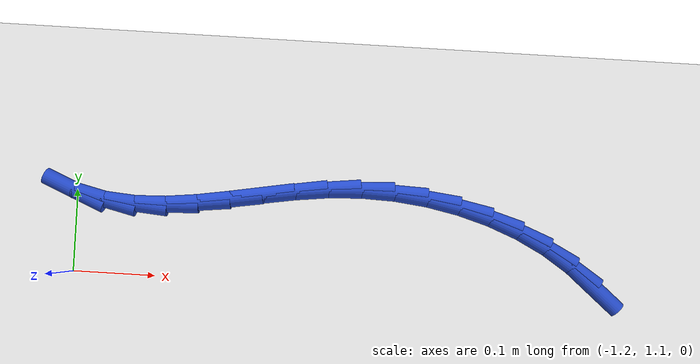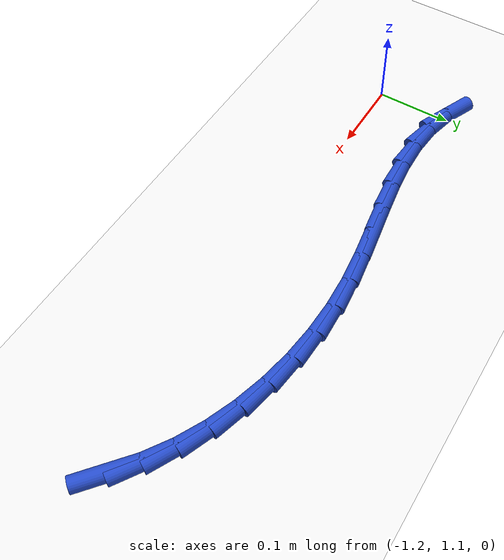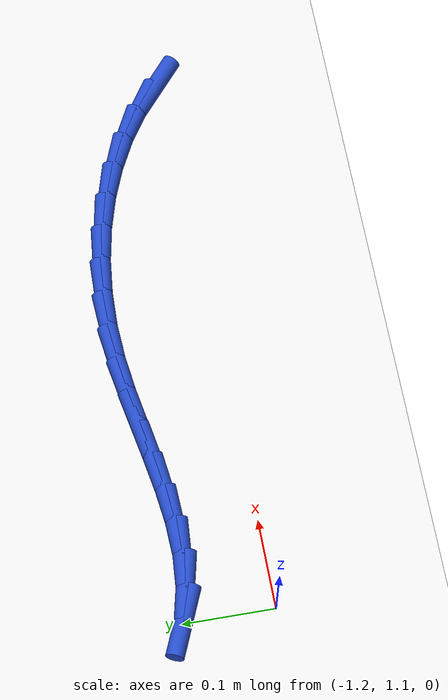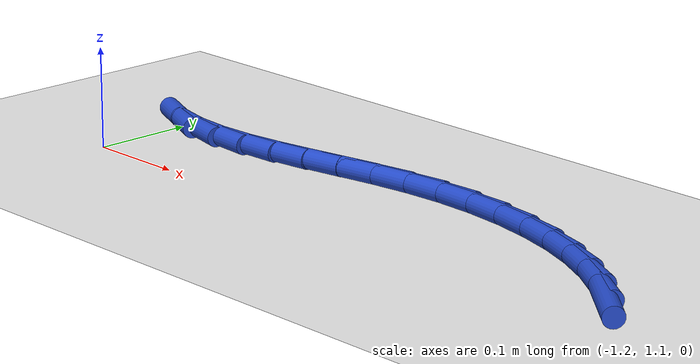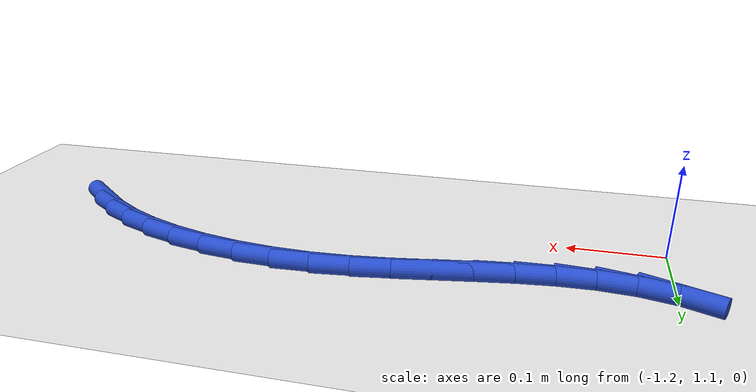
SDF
<sdf version="1.6">
 <world name="default">
  <model name="ground_plane">
   <static>1</static>
   <link name="link">
    <collision name="collision">
     <geometry><plane><normal>0 0 1</normal><size>100 100</size></plane></geometry>
     <surface><friction><ode><mu>100</mu><mu2>50</mu2></ode></friction></surface>
    </collision>
    <visual name="visual">
     <cast_shadows>0</cast_shadows>
     <geometry><plane><normal>0 0 1</normal><size>100 100</size></plane></geometry>
     <material>
      <script><uri>file://media/materials/scripts/gazebo.material</uri><name>Gazebo/WhiteGlow</name></script>
     </material>
    </visual>
   </link>
  </model>
  <model name="line">
   <link name="link_34">
    <pose>-0.5678974631067041 1.1183019132170997 0.01 0 1.57 -0.6992649917668289</pose>
    <collision name="collision">
     <geometry><cylinder><radius>0.01</radius><length>0.08</length></cylinder></geometry>
    </collision>
    <visual name="visual">
     <material>
      <script><name>Gazebo/Blue</name><uri>file://media/materials/scripts/gazebo.material</uri></script>
     </material>
     <geometry><cylinder><radius>0.01</radius><length>0.08</length></cylinder></geometry>
    </visual>
   </link>
   <link name="link_35">
    <pose>-0.5958572411078632 1.1418170007449144 0.01 0 1.57 -0.5814417226303559</pose>
    <collision name="collision">
     <geometry><cylinder><radius>0.01</radius><length>0.08</length></cylinder></geometry>
    </collision>
    <visual name="visual">
     <material>
      <script><name>Gazebo/Blue</name><uri>file://media/materials/scripts/gazebo.material</uri></script>
     </material>
     <geometry><cylinder><radius>0.01</radius><length>0.08</length></cylinder></geometry>
    </visual>
   </link>
   <link name="link_36">
    <pose>-0.6269995718535288 1.1622847051215315 0.01 0 1.57 -0.47424900157333966</pose>
    <collision name="collision">
     <geometry><cylinder><radius>0.01</radius><length>0.08</length></cylinder></geometry>
    </collision>
    <visual name="visual">
     <material>
      <script><name>Gazebo/Blue</name><uri>file://media/materials/scripts/gazebo.material</uri></script>
     </material>
     <geometry><cylinder><radius>0.01</radius><length>0.08</length></cylinder></geometry>
    </visual>
   </link>
   <link name="link_37">
    <pose>-0.6608554802105862 1.1796637168364834 0.01 0 1.57 -0.3759323834869725</pose>
    <collision name="collision">
     <geometry><cylinder><radius>0.01</radius><length>0.08</length></cylinder></geometry>
    </collision>
    <visual name="visual">
     <material>
      <script><name>Gazebo/Blue</name><uri>file://media/materials/scripts/gazebo.material</uri></script>
     </material>
     <geometry><cylinder><radius>0.01</radius><length>0.08</length></cylinder></geometry>
    </visual>
   </link>
   <link name="link_38">
    <pose>-0.6969559910459185 1.1939127263792981 0.01 0 1.57 -0.28453585115900837</pose>
    <collision name="collision">
     <geometry><cylinder><radius>0.01</radius><length>0.08</length></cylinder></geometry>
    </collision>
    <visual name="visual">
     <material>
      <script><name>Gazebo/Blue</name><uri>file://media/materials/scripts/gazebo.material</uri></script>
     </material>
     <geometry><cylinder><radius>0.01</radius><length>0.08</length></cylinder></geometry>
    </visual>
   </link>
   <link name="link_39">
    <pose>-0.7348321292264106 1.2049904242395075 0.01 0 1.57 -0.19809530270771414</pose>
    <collision name="collision">
     <geometry><cylinder><radius>0.01</radius><length>0.08</length></cylinder></geometry>
    </collision>
    <visual name="visual">
     <material>
      <script><name>Gazebo/Blue</name><uri>file://media/materials/scripts/gazebo.material</uri></script>
     </material>
     <geometry><cylinder><radius>0.01</radius><length>0.08</length></cylinder></geometry>
    </visual>
   </link>
   <link name="link_40">
    <pose>-0.7740149196189464 1.2128555009066413 0.01 0 1.57 -0.11471384654005204</pose>
    <collision name="collision">
     <geometry><cylinder><radius>0.01</radius><length>0.08</length></cylinder></geometry>
    </collision>
    <visual name="visual">
     <material>
      <script><name>Gazebo/Blue</name><uri>file://media/materials/scripts/gazebo.material</uri></script>
     </material>
     <geometry><cylinder><radius>0.01</radius><length>0.08</length></cylinder></geometry>
    </visual>
   </link>
   <link name="link_41">
    <pose>-0.8140353870904102 1.2174666468702302 0.01 0 1.57 -0.03256913805982124</pose>
    <collision name="collision">
     <geometry><cylinder><radius>0.01</radius><length>0.08</length></cylinder></geometry>
    </collision>
    <visual name="visual">
     <material>
      <script><name>Gazebo/Blue</name><uri>file://media/materials/scripts/gazebo.material</uri></script>
     </material>
     <geometry><cylinder><radius>0.01</radius><length>0.08</length></cylinder></geometry>
    </visual>
   </link>
   <link name="link_42">
    <pose>-0.8544245565076862 1.2187825526198042 0.01 0 1.57 0.04973553143149947</pose>
    <collision name="collision">
     <geometry><cylinder><radius>0.01</radius><length>0.08</length></cylinder></geometry>
    </collision>
    <visual name="visual">
     <material>
      <script><name>Gazebo/Blue</name><uri>file://media/materials/scripts/gazebo.material</uri></script>
     </material>
     <geometry><cylinder><radius>0.01</radius><length>0.08</length></cylinder></geometry>
    </visual>
   </link>
   <link name="link_43">
    <pose>-0.894718693326517 1.2167768482532169 0.01 0 1.57 0.12036940523979064</pose>
    <collision name="collision">
     <geometry><cylinder><radius>0.01</radius><length>0.08</length></cylinder></geometry>
    </collision>
    <visual name="visual">
     <material>
      <script><name>Gazebo/Blue</name><uri>file://media/materials/scripts/gazebo.material</uri></script>
     </material>
     <geometry><cylinder><radius>0.01</radius><length>0.08</length></cylinder></geometry>
    </visual>
   </link>
   <link name="link_44">
    <pose>-0.9346383099198979 1.211948405754866 0.01 0 1.57 0.16313081692728298</pose>
    <collision name="collision">
     <geometry><cylinder><radius>0.01</radius><length>0.08</length></cylinder></geometry>
    </collision>
    <visual name="visual">
     <material>
      <script><name>Gazebo/Blue</name><uri>file://media/materials/scripts/gazebo.material</uri></script>
     </material>
     <geometry><cylinder><radius>0.01</radius><length>0.08</length></cylinder></geometry>
    </visual>
   </link>
   <link name="link_45">
    <pose>-0.9741325648188227 1.2054479101281605 0.01 0 1.57 0.1769865569835285</pose>
    <collision name="collision">
     <geometry><cylinder><radius>0.01</radius><length>0.08</length></cylinder></geometry>
    </collision>
    <visual name="visual">
     <material>
      <script><name>Gazebo/Blue</name><uri>file://media/materials/scripts/gazebo.material</uri></script>
     </material>
     <geometry><cylinder><radius>0.01</radius><length>0.08</length></cylinder></geometry>
    </visual>
   </link>
   <link name="link_46">
    <pose>-1.0131648669443891 1.1984666706751064 0.01 0 1.57 0.16131788779947123</pose>
    <collision name="collision">
     <geometry><cylinder><radius>0.01</radius><length>0.08</length></cylinder></geometry>
    </collision>
    <visual name="visual">
     <material>
      <script><name>Gazebo/Blue</name><uri>file://media/materials/scripts/gazebo.material</uri></script>
     </material>
     <geometry><cylinder><radius>0.01</radius><length>0.08</length></cylinder></geometry>
    </visual>
   </link>
   <link name="link_47">
    <pose>-1.051698625217694 1.1921959966977087 0.01 0 1.57 0.11446994997318768</pose>
    <collision name="collision">
     <geometry><cylinder><radius>0.01</radius><length>0.08</length></cylinder></geometry>
    </collision>
    <visual name="visual">
     <material>
      <script><name>Gazebo/Blue</name><uri>file://media/materials/scripts/gazebo.material</uri></script>
     </material>
     <geometry><cylinder><radius>0.01</radius><length>0.08</length></cylinder></geometry>
    </visual>
   </link>
   <link name="link_48">
    <pose>-1.0896972485598355 1.187827197497973 0.01 0 1.57 0.03406965630708238</pose>
    <collision name="collision">
     <geometry><cylinder><radius>0.01</radius><length>0.08</length></cylinder></geometry>
    </collision>
    <visual name="visual">
     <material>
      <script><name>Gazebo/Blue</name><uri>file://media/materials/scripts/gazebo.material</uri></script>
     </material>
     <geometry><cylinder><radius>0.01</radius><length>0.08</length></cylinder></geometry>
    </visual>
   </link>
   <link name="link_49">
    <pose>-1.12712414589191 1.1865515823779043 0.01 0 1.57 -0.08154053600788012</pose>
    <collision name="collision">
     <geometry><cylinder><radius>0.01</radius><length>0.08</length></cylinder></geometry>
    </collision>
    <visual name="visual">
     <material>
      <script><name>Gazebo/Blue</name><uri>file://media/materials/scripts/gazebo.material</uri></script>
     </material>
     <geometry><cylinder><radius>0.01</radius><length>0.08</length></cylinder></geometry>
    </visual>
   </link>
   <link name="link_50">
    <pose>-1.1639427261350153 1.1895604606395085 0.01 0 1.57 -0.23038929816476642</pose>
    <collision name="collision">
     <geometry><cylinder><radius>0.01</radius><length>0.08</length></cylinder></geometry>
    </collision>
    <visual name="visual">
     <material>
      <script><name>Gazebo/Blue</name><uri>file://media/materials/scripts/gazebo.material</uri></script>
     </material>
     <geometry><cylinder><radius>0.01</radius><length>0.08</length></cylinder></geometry>
    </visual>
   </link>
   <link name="link_51">
    <pose>-1.2001163982102483 1.1980451415847897 0.01 0 1.57 -0.40348325662939266</pose>
    <collision name="collision">
     <geometry><cylinder><radius>0.01</radius><length>0.08</length></cylinder></geometry>
    </collision>
    <visual name="visual">
     <material>
      <script><name>Gazebo/Blue</name><uri>file://media/materials/scripts/gazebo.material</uri></script>
     </material>
     <geometry><cylinder><radius>0.01</radius><length>0.08</length></cylinder></geometry>
    </visual>
   </link>
  </model>
 </world>
</sdf>
